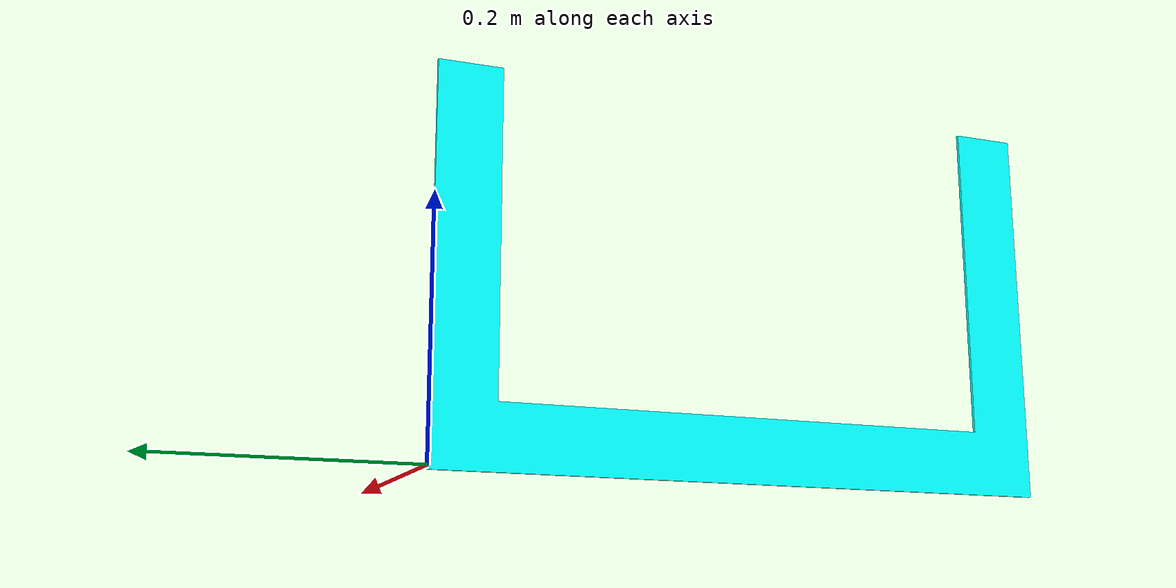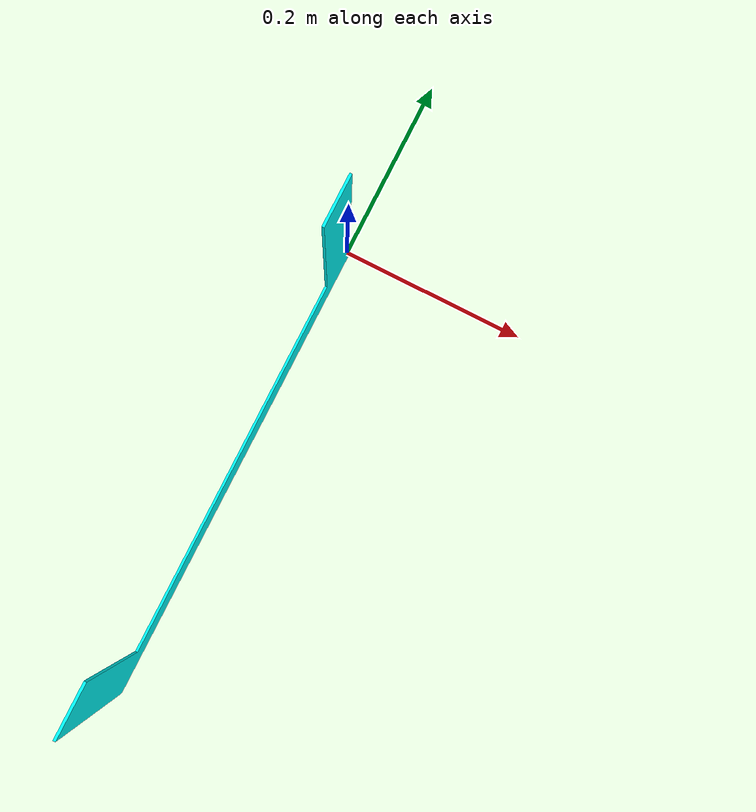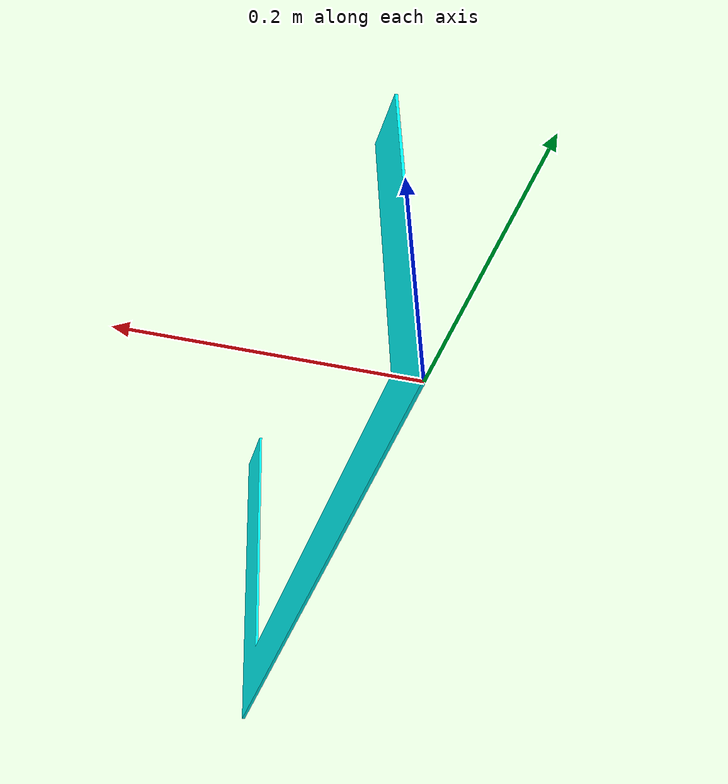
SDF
<?xml version="1.0" encoding="utf-8"?>
<sdf version="1.5">
  <model name="TapePattern">
    <pose>0 0 -0.00253999999999999 0 0 0</pose>
    <link name="Body">
      <gravity>0</gravity>
      <self_collide>0</self_collide>
      <pose>0.00127000000000008 -0.254 0.1016 1.5707963267949 0 -1.5707963267949</pose>
      <must_be_base_link>1</must_be_base_link>
      <velocity_decay>
        <linear>0</linear>
        <angular>0</angular>
      </velocity_decay>
      <visual name="Body_visual">
        <pose>0.0372830252811577 -0.0979872916795091 -0.00127 0 0 0</pose>
        <material>
          <ambient>0.0 1.0 1.0 1</ambient>
          <diffuse>0.0 1.0 1.0 1</diffuse>
          <emissive>0.2 1.0 1.0 1</emissive>
        </material>
        <geometry>
          <mesh>
            <scale>1 1 1</scale>
            <uri>model://TapePattern/meshes/Body.STL</uri>
          </mesh>
        </geometry>
      </visual>
    </link>
  </model>
</sdf>
